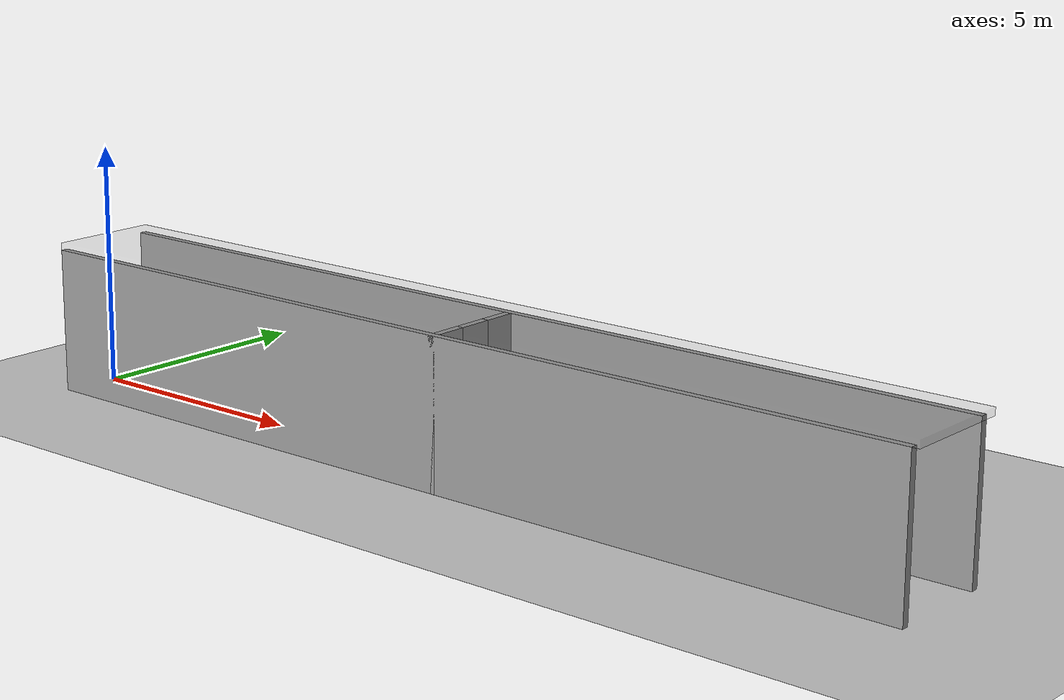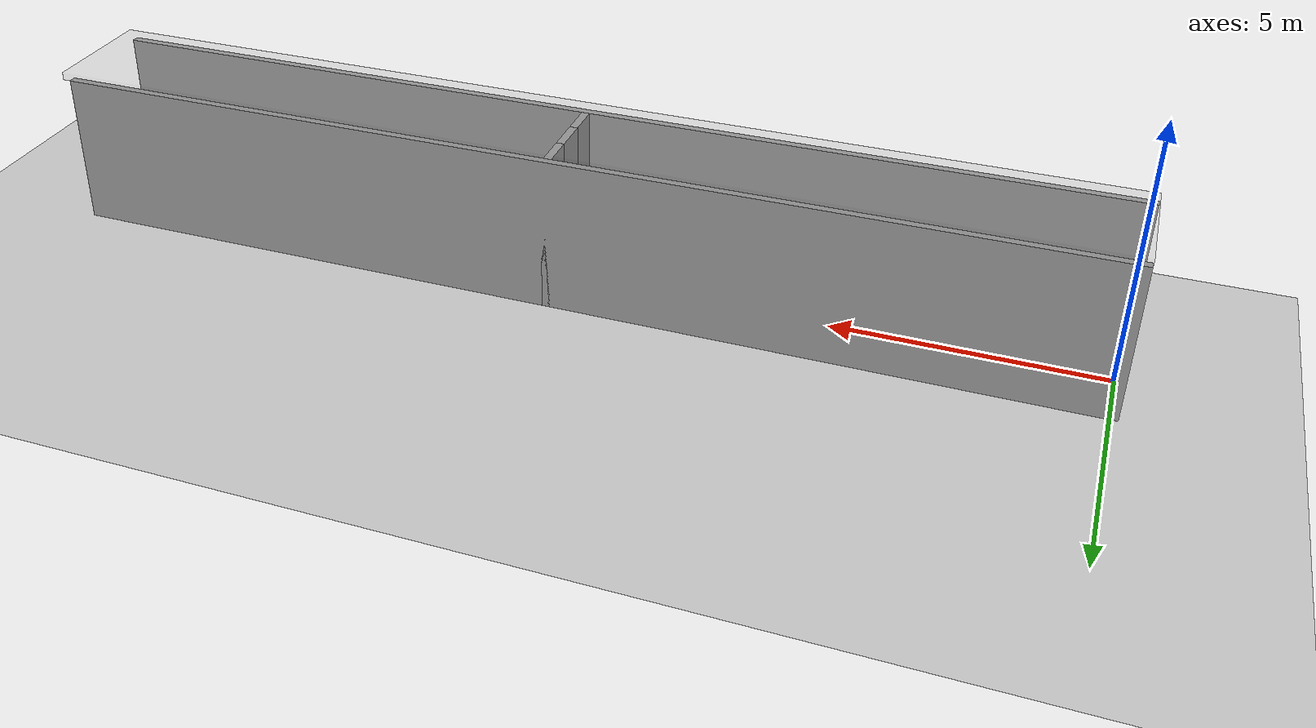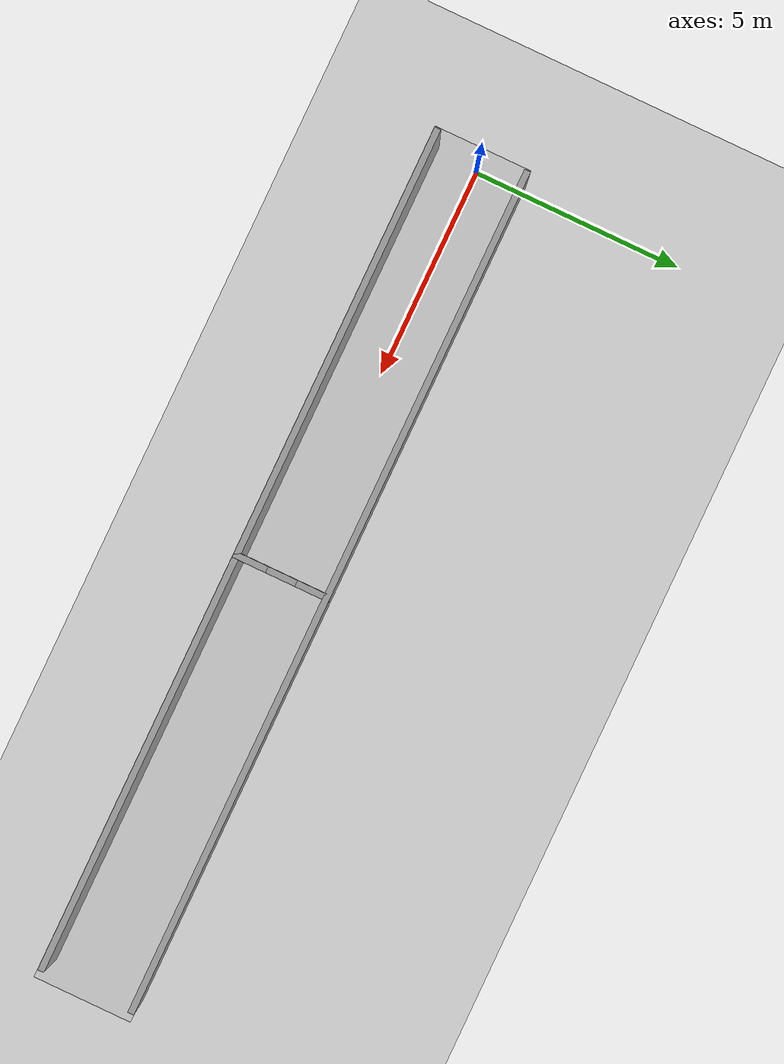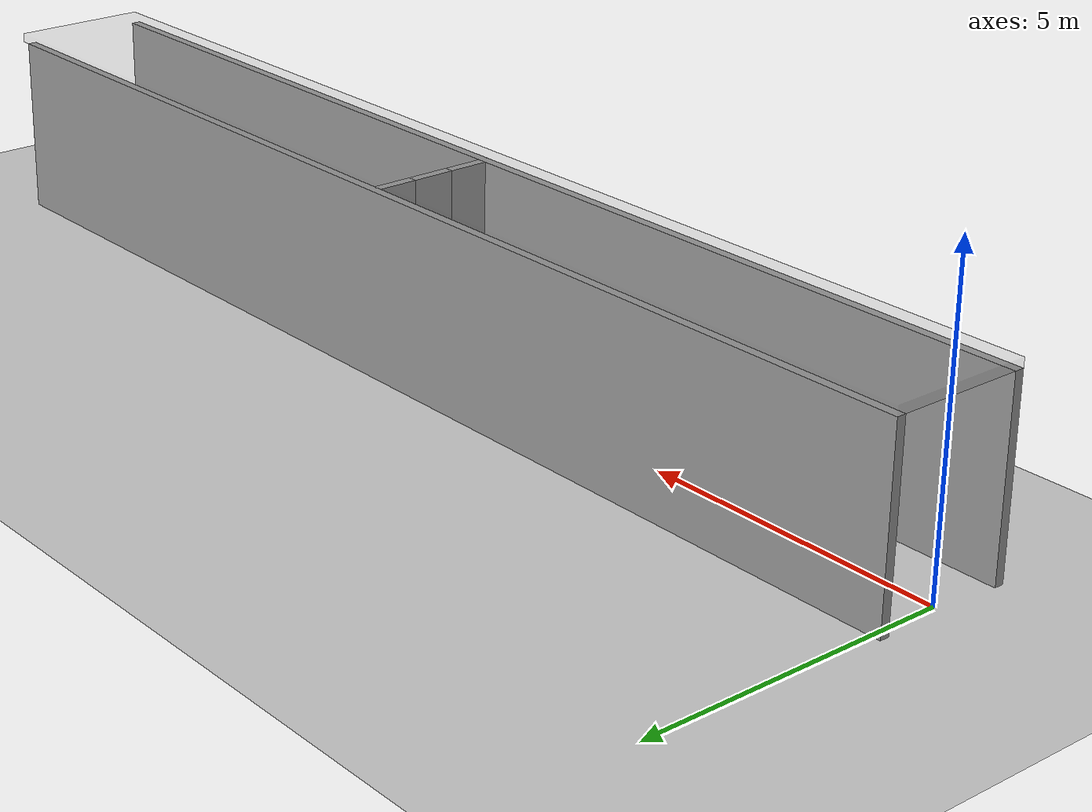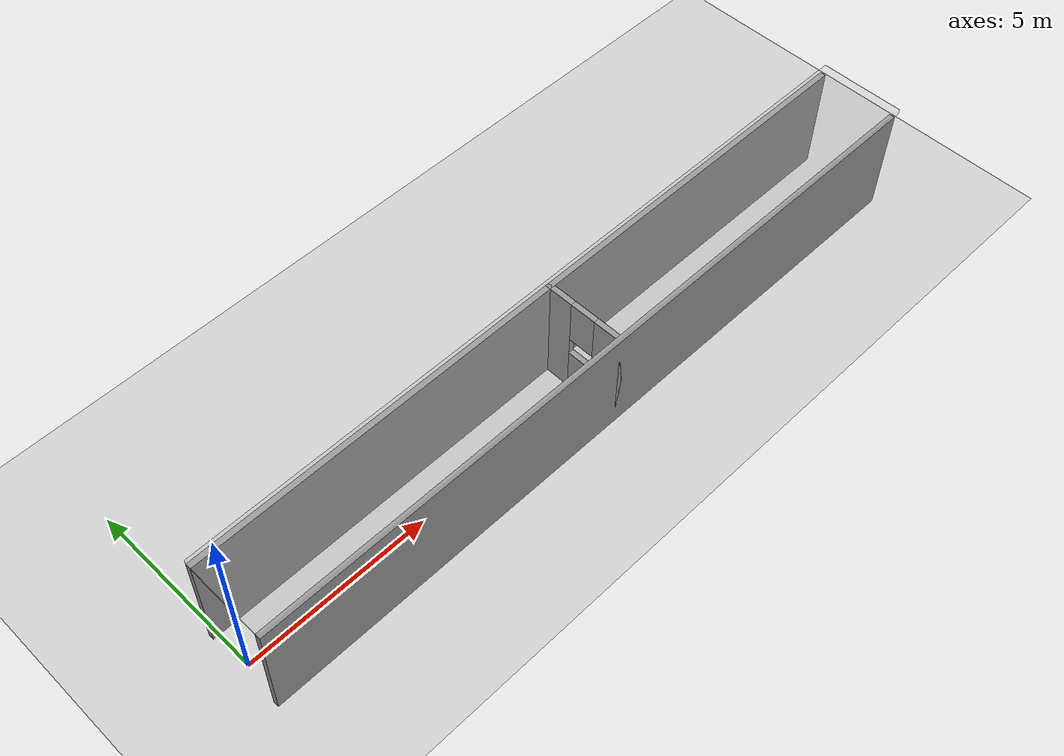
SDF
<?xml version="1.0" ?>
<sdf version="1.5">
  <world name="default">
    <include>
      <uri>model://sun</uri>
    </include>
    <include>
      <uri>model://ground_plane</uri>
    </include>
    <include>
      <uri>model://asphalt_plane</uri>
      <pose>0 0 -0.000001 0 0 0</pose>
    </include>

    <model name='unit_box_0'>
      <pose>9.925 -1.075 1.500 0 0 0</pose>
      <link name='link'>
        <gravity>1</gravity>
        <inertial>
          <mass>10000</mass>
          <inertia>
            <ixx>2000</ixx>
            <ixy>0</ixy>
            <ixz>0</ixz>
            <iyy>2000</iyy>
            <iyz>0</iyz>
            <izz>2000</izz>
          </inertia>
          <pose>0 0 0 0 0 0</pose>
        </inertial>
        <collision name='collision'>
          <geometry>
            <box>
              <size>20.150 0.150 3.000</size>
            </box>
          </geometry>
          <max_contacts>10</max_contacts>
          <surface>
            <contact>
              <ode/>
            </contact>
            <bounce/>
            <friction>
              <torsional>
                <ode/>
              </torsional>
              <ode/>
            </friction>
          </surface>
        </collision>
        <visual name='visual'>
          <geometry>
            <box>
              <size>20.150 0.150 3.000</size>
            </box>
          </geometry>
          <material>
            <script>
              <name>Gazebo/Grey</name>
              <uri>file://media/materials/scripts/gazebo.material</uri>
            </script>
          </material>
        </visual>
      </link>
      <static>1</static>
    </model>

    <model name='unit_box_1'>
      <pose>9.925 1.075 1.500 0 0 0</pose>
      <link name='link'>
        <gravity>1</gravity>
        <inertial>
          <mass>10000</mass>
          <inertia>
            <ixx>2000</ixx>
            <ixy>0</ixy>
            <ixz>0</ixz>
            <iyy>2000</iyy>
            <iyz>0</iyz>
            <izz>2000</izz>
          </inertia>
          <pose>0 0 0 0 0 0</pose>
        </inertial>
        <collision name='collision'>
          <geometry>
            <box>
              <size>20.150 0.150 3.000</size>
            </box>
          </geometry>
          <max_contacts>10</max_contacts>
          <surface>
            <contact>
              <ode/>
            </contact>
            <bounce/>
            <friction>
              <torsional>
                <ode/>
              </torsional>
              <ode/>
            </friction>
          </surface>
        </collision>
        <visual name='visual'>
          <geometry>
            <box>
              <size>20.150 0.150 3.000</size>
            </box>
          </geometry>
          <material>
            <script>
              <name>Gazebo/Grey</name>
              <uri>file://media/materials/scripts/gazebo.material</uri>
            </script>
          </material>
        </visual>
      </link>
      <static>1</static>
    </model>

    <model name='unit_box_2'>
      <pose>10.075 -0.750 1.500 0 0 0</pose>
      <link name='link'>
        <gravity>1</gravity>
        <inertial>
          <mass>10000</mass>
          <inertia>
            <ixx>2000</ixx>
            <ixy>0</ixy>
            <ixz>0</ixz>
            <iyy>2000</iyy>
            <iyz>0</iyz>
            <izz>2000</izz>
          </inertia>
          <pose>0 0 0 0 0 0</pose>
        </inertial>
        <collision name='collision'>
          <geometry>
            <box>
              <size>0.150 0.800 3.000</size>
            </box>
          </geometry>
          <max_contacts>10</max_contacts>
          <surface>
            <contact>
              <ode/>
            </contact>
            <bounce/>
            <friction>
              <torsional>
                <ode/>
              </torsional>
              <ode/>
            </friction>
          </surface>
        </collision>
        <visual name='visual'>
          <geometry>
            <box>
              <size>0.150 0.800 3.000</size>
            </box>
          </geometry>
          <material>
            <script>
              <name>Gazebo/Grey</name>
              <uri>file://media/materials/scripts/gazebo.material</uri>
            </script>
          </material>
        </visual>
      </link>
      <static>1</static>
    </model>

    <model name='unit_box_3'>
      <pose>10.075 0.750 1.500 0 0 0</pose>
      <link name='link'>
        <gravity>1</gravity>
        <inertial>
          <mass>10000</mass>
          <inertia>
            <ixx>2000</ixx>
            <ixy>0</ixy>
            <ixz>0</ixz>
            <iyy>2000</iyy>
            <iyz>0</iyz>
            <izz>2000</izz>
          </inertia>
          <pose>0 0 0 0 0 0</pose>
        </inertial>
        <collision name='collision'>
          <geometry>
            <box>
              <size>0.150 0.800 3.000</size>
            </box>
          </geometry>
          <max_contacts>10</max_contacts>
          <surface>
            <contact>
              <ode/>
            </contact>
            <bounce/>
            <friction>
              <torsional>
                <ode/>
              </torsional>
              <ode/>
            </friction>
          </surface>
        </collision>
        <visual name='visual'>
          <geometry>
            <box>
              <size>0.150 0.800 3.000</size>
            </box>
          </geometry>
          <material>
            <script>
              <name>Gazebo/Grey</name>
              <uri>file://media/materials/scripts/gazebo.material</uri>
            </script>
          </material>
        </visual>
      </link>
      <static>1</static>
    </model>

    <model name='unit_box_4'>
      <pose>10.075 0.000 0.625 0 0 0</pose>
      <link name='link'>
        <gravity>1</gravity>
        <inertial>
          <mass>10000</mass>
          <inertia>
            <ixx>2000</ixx>
            <ixy>0</ixy>
            <ixz>0</ixz>
            <iyy>2000</iyy>
            <iyz>0</iyz>
            <izz>2000</izz>
          </inertia>
          <pose>0 0 0 0 0 0</pose>
        </inertial>
        <collision name='collision'>
          <geometry>
            <box>
              <size>0.150 0.700 1.250</size>
            </box>
          </geometry>
          <max_contacts>10</max_contacts>
          <surface>
            <contact>
              <ode/>
            </contact>
            <bounce/>
            <friction>
              <torsional>
                <ode/>
              </torsional>
              <ode/>
            </friction>
          </surface>
        </collision>
        <visual name='visual'>
          <geometry>
            <box>
              <size>0.150 0.700 1.250</size>
            </box>
          </geometry>
          <material>
            <script>
              <name>Gazebo/Grey</name>
              <uri>file://media/materials/scripts/gazebo.material</uri>
            </script>
          </material>
        </visual>
      </link>
      <static>1</static>
    </model>

    <model name='unit_box_5'>
      <pose>10.075 0.000 2.375 0 0 0</pose>
      <link name='link'>
        <gravity>1</gravity>
        <inertial>
          <mass>10000</mass>
          <inertia>
            <ixx>2000</ixx>
            <ixy>0</ixy>
            <ixz>0</ixz>
            <iyy>2000</iyy>
            <iyz>0</iyz>
            <izz>2000</izz>
          </inertia>
          <pose>0 0 0 0 0 0</pose>
        </inertial>
        <collision name='collision'>
          <geometry>
            <box>
              <size>0.150 0.700 1.250</size>
            </box>
          </geometry>
          <max_contacts>10</max_contacts>
          <surface>
            <contact>
              <ode/>
            </contact>
            <bounce/>
            <friction>
              <torsional>
                <ode/>
              </torsional>
              <ode/>
            </friction>
          </surface>
        </collision>
        <visual name='visual'>
          <geometry>
            <box>
              <size>0.150 0.700 1.250</size>
            </box>
          </geometry>
          <material>
            <script>
              <name>Gazebo/Grey</name>
              <uri>file://media/materials/scripts/gazebo.material</uri>
            </script>
          </material>
        </visual>
      </link>
      <static>1</static>
    </model>

    <model name='unit_box_6'>
      <pose>10.000 0.000 3.075 0 0 0</pose>
      <link name='link'>
        <gravity>1</gravity>
        <inertial>
          <mass>10000</mass>
          <inertia>
            <ixx>2000</ixx>
            <ixy>0</ixy>
            <ixz>0</ixz>
            <iyy>2000</iyy>
            <iyz>0</iyz>
            <izz>2000</izz>
          </inertia>
          <pose>0 0 0 0 0 0</pose>
        </inertial>
        <collision name='collision'>
          <geometry>
            <box>
              <size>20.300 2.300 0.150</size>
            </box>
          </geometry>
          <max_contacts>10</max_contacts>
          <surface>
            <contact>
              <ode/>
            </contact>
            <bounce/>
            <friction>
              <torsional>
                <ode/>
              </torsional>
              <ode/>
            </friction>
          </surface>
        </collision>
        <visual name='visual'>
          <transparency>0.900</transparency>
          <geometry>
            <box>
              <size>20.300 2.300 0.150</size>
            </box>
          </geometry>
          <material>
            <script>
              <name>Gazebo/Grey</name>
              <uri>file://media/materials/scripts/gazebo.material</uri>
            </script>
          </material>
        </visual>
      </link>
      <static>1</static>
    </model>
        <physics name="default_physics" default="0" type="ode">
      <gravity>0 0 -9.8066</gravity>
      <ode>
        <solver>
          <type>quick</type>
          <iters>10</iters>
          <sor>1.3</sor>
          <use_dynamic_moi_rescaling>0</use_dynamic_moi_rescaling>
        </solver>
        <constraints>
          <cfm>0</cfm>
          <erp>0.2</erp>
          <contact_max_correcting_vel>100</contact_max_correcting_vel>
          <contact_surface_layer>0.001</contact_surface_layer>
        </constraints>
      </ode>
      <max_step_size>0.004</max_step_size>
      <real_time_factor>1</real_time_factor>
      <real_time_update_rate>250</real_time_update_rate>
      <magnetic_field>6.0e-6 2.3e-5 -4.2e-5</magnetic_field>
    </physics>
  </world>
</sdf>
